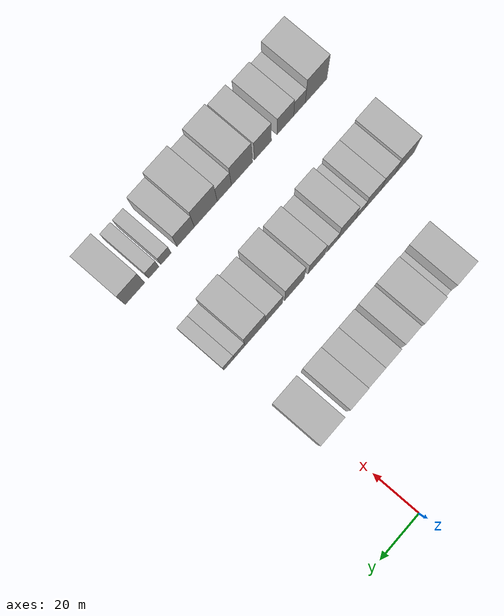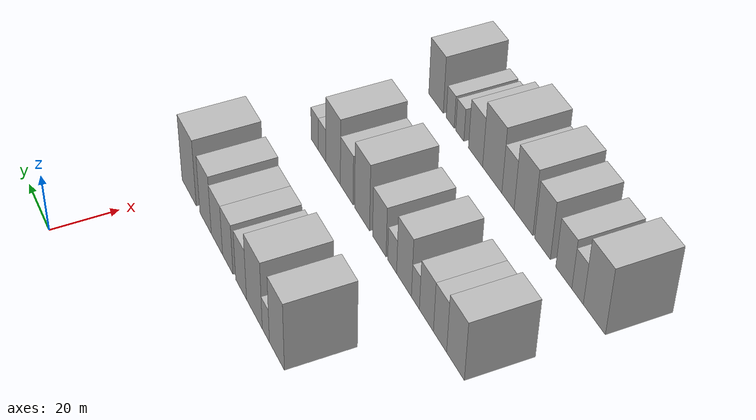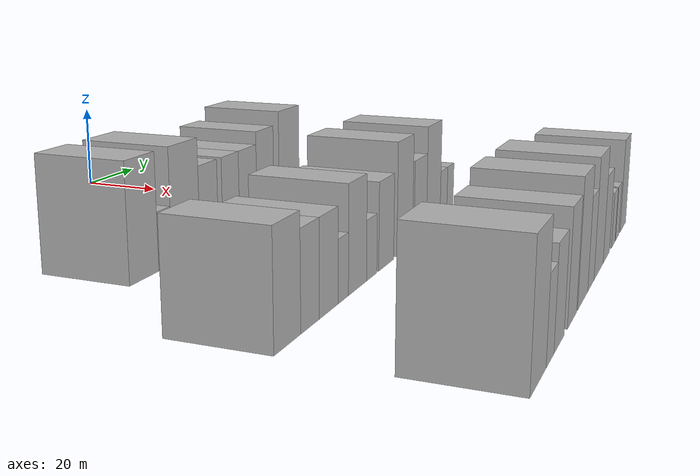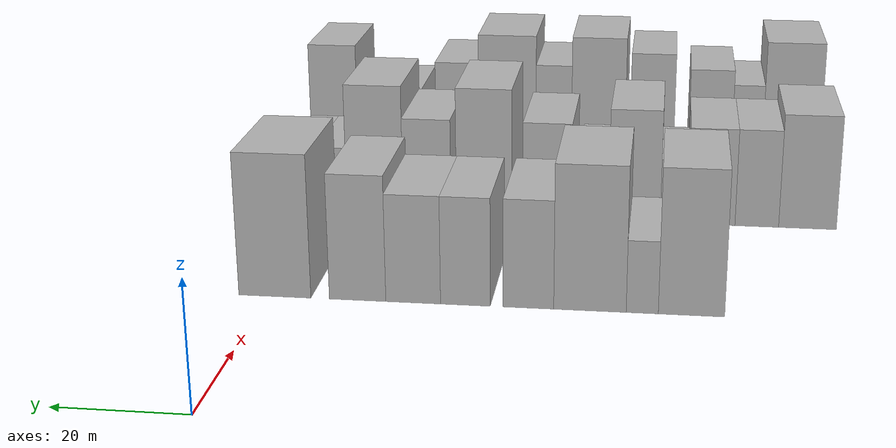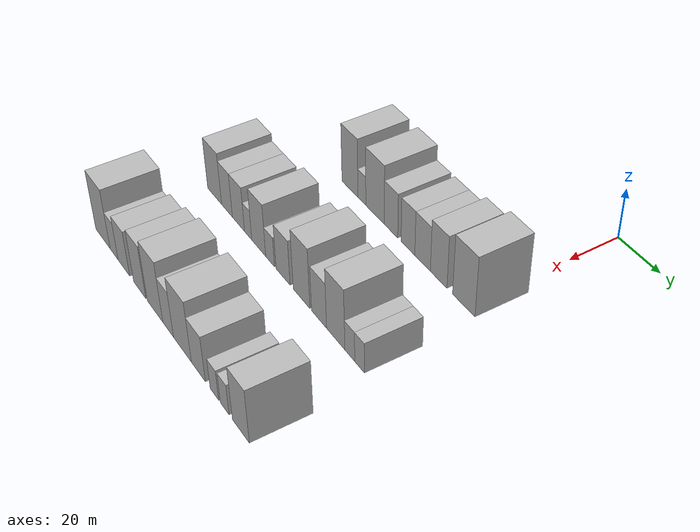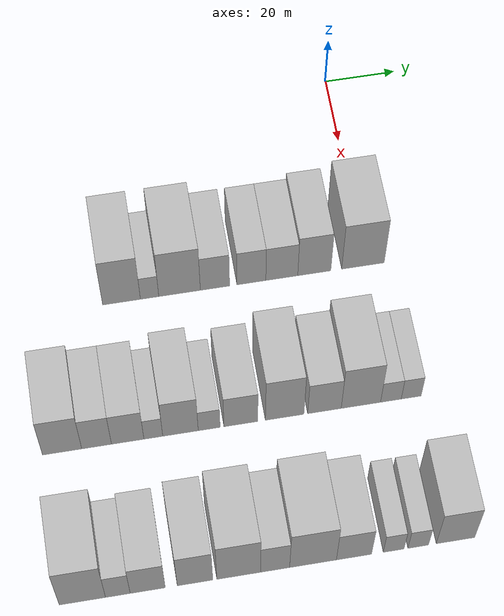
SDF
<sdf version="1.6">
 <world name="default">
  <model name="building_29">
   <static>1</static>
   <pose>50.0000 -66.9518 0 0.000000 0.000000 0.000000</pose>
   <link name="link">
    <pose>0 0 12.00 0 0 0</pose>
    <collision name="collision"><geometry><box><size>20.0000 10.2181 24.0000</size></box></geometry></collision>
    <visual name="visual">
     <cast_shadows>0</cast_shadows>
     <geometry><box><size>20.0000 10.2181 24.0000</size></box></geometry>
     <material>
      <script>
       <uri>model://HANNAS_wall/materials/scripts</uri>
       <uri>model://HANNAS_wall/materials/textures</uri>
       <name>vrc/HANNAS_wall</name>
      </script>
     </material>
    </visual>
   </link>
  </model>
  <model name="building_30">
   <static>1</static>
   <pose>50.0000 -59.3542 0 0.000000 0.000000 0.000000</pose>
   <link name="link">
    <pose>0 0 6.00 0 0 0</pose>
    <collision name="collision"><geometry><box><size>20.0000 4.9770 12.0000</size></box></geometry></collision>
    <visual name="visual">
     <cast_shadows>0</cast_shadows>
     <geometry><box><size>20.0000 4.9770 12.0000</size></box></geometry>
     <material>
      <script>
       <uri>model://HANNAS_wall/materials/scripts</uri>
       <uri>model://HANNAS_wall/materials/textures</uri>
       <name>vrc/HANNAS_wall</name>
      </script>
     </material>
    </visual>
   </link>
  </model>
  <model name="building_31">
   <static>1</static>
   <pose>50.0000 -51.2099 0 0.000000 0.000000 0.000000</pose>
   <link name="link">
    <pose>0 0 12.00 0 0 0</pose>
    <collision name="collision"><geometry><box><size>20.0000 11.3114 24.0000</size></box></geometry></collision>
    <visual name="visual">
     <cast_shadows>0</cast_shadows>
     <geometry><box><size>20.0000 11.3114 24.0000</size></box></geometry>
     <material>
      <script>
       <uri>model://HANNAS_wall/materials/scripts</uri>
       <uri>model://HANNAS_wall/materials/textures</uri>
       <name>vrc/HANNAS_wall</name>
      </script>
     </material>
    </visual>
   </link>
  </model>
  <model name="building_32">
   <static>1</static>
   <pose>50.0000 -41.5600 0 0.000000 0.000000 0.000000</pose>
   <link name="link">
    <pose>0 0 9.00 0 0 0</pose>
    <collision name="collision"><geometry><box><size>20.0000 7.9885 18.0000</size></box></geometry></collision>
    <visual name="visual">
     <cast_shadows>0</cast_shadows>
     <geometry><box><size>20.0000 7.9885 18.0000</size></box></geometry>
     <material>
      <script>
       <uri>model://HANNAS_wall/materials/scripts</uri>
       <uri>model://HANNAS_wall/materials/textures</uri>
       <name>vrc/HANNAS_wall</name>
      </script>
     </material>
    </visual>
   </link>
  </model>
  <model name="building_33">
   <static>1</static>
   <pose>50.0000 -31.6120 0 0.000000 0.000000 0.000000</pose>
   <link name="link">
    <pose>0 0 9.00 0 0 0</pose>
    <collision name="collision"><geometry><box><size>20.0000 7.9074 18.0000</size></box></geometry></collision>
    <visual name="visual">
     <cast_shadows>0</cast_shadows>
     <geometry><box><size>20.0000 7.9074 18.0000</size></box></geometry>
     <material>
      <script>
       <uri>model://HANNAS_wall/materials/scripts</uri>
       <uri>model://HANNAS_wall/materials/textures</uri>
       <name>vrc/HANNAS_wall</name>
      </script>
     </material>
    </visual>
   </link>
  </model>
  <model name="building_34">
   <static>1</static>
   <pose>50.0000 -23.2832 0 0.000000 0.000000 0.000000</pose>
   <link name="link">
    <pose>0 0 9.00 0 0 0</pose>
    <collision name="collision"><geometry><box><size>20.0000 8.7502 18.0000</size></box></geometry></collision>
    <visual name="visual">
     <cast_shadows>0</cast_shadows>
     <geometry><box><size>20.0000 8.7502 18.0000</size></box></geometry>
     <material>
      <script>
       <uri>model://HANNAS_wall/materials/scripts</uri>
       <uri>model://HANNAS_wall/materials/textures</uri>
       <name>vrc/HANNAS_wall</name>
      </script>
     </material>
    </visual>
   </link>
  </model>
  <model name="building_35">
   <static>1</static>
   <pose>50.0000 -14.3598 0 0.000000 0.000000 0.000000</pose>
   <link name="link">
    <pose>0 0 10.50 0 0 0</pose>
    <collision name="collision"><geometry><box><size>20.0000 9.0968 21.0000</size></box></geometry></collision>
    <visual name="visual">
     <cast_shadows>0</cast_shadows>
     <geometry><box><size>20.0000 9.0968 21.0000</size></box></geometry>
     <material>
      <script>
       <uri>model://HANNAS_wall/materials/scripts</uri>
       <uri>model://HANNAS_wall/materials/textures</uri>
       <name>vrc/HANNAS_wall</name>
      </script>
     </material>
    </visual>
   </link>
  </model>
  <model name="building_36">
   <static>1</static>
   <pose>50.0000 -0.9406 0 0.000000 0.000000 0.000000</pose>
   <link name="link">
    <pose>0 0 12.00 0 0 0</pose>
    <collision name="collision"><geometry><box><size>20.0000 11.7416 24.0000</size></box></geometry></collision>
    <visual name="visual">
     <cast_shadows>0</cast_shadows>
     <geometry><box><size>20.0000 11.7416 24.0000</size></box></geometry>
     <material>
      <script>
       <uri>model://HANNAS_wall/materials/scripts</uri>
       <uri>model://HANNAS_wall/materials/textures</uri>
       <name>vrc/HANNAS_wall</name>
      </script>
     </material>
    </visual>
   </link>
  </model>
  <model name="building_116">
   <static>1</static>
   <pose>90.0000 -87.7592 0 0.000000 0.000000 0.000000</pose>
   <link name="link">
    <pose>0 0 10.50 0 0 0</pose>
    <collision name="collision"><geometry><box><size>20.0000 10.1635 21.0000</size></box></geometry></collision>
    <visual name="visual">
     <cast_shadows>0</cast_shadows>
     <geometry><box><size>20.0000 10.1635 21.0000</size></box></geometry>
     <material>
      <script>
       <uri>model://HANNAS_wall/materials/scripts</uri>
       <uri>model://HANNAS_wall/materials/textures</uri>
       <name>vrc/HANNAS_wall</name>
      </script>
     </material>
    </visual>
   </link>
  </model>
  <model name="building_117">
   <static>1</static>
   <pose>90.0000 -78.8114 0 0.000000 0.000000 0.000000</pose>
   <link name="link">
    <pose>0 0 9.00 0 0 0</pose>
    <collision name="collision"><geometry><box><size>20.0000 7.7322 18.0000</size></box></geometry></collision>
    <visual name="visual">
     <cast_shadows>0</cast_shadows>
     <geometry><box><size>20.0000 7.7322 18.0000</size></box></geometry>
     <material>
      <script>
       <uri>model://HANNAS_wall/materials/scripts</uri>
       <uri>model://HANNAS_wall/materials/textures</uri>
       <name>vrc/HANNAS_wall</name>
      </script>
     </material>
    </visual>
   </link>
  </model>
  <model name="building_118">
   <static>1</static>
   <pose>90.0000 -70.7205 0 0.000000 0.000000 0.000000</pose>
   <link name="link">
    <pose>0 0 9.00 0 0 0</pose>
    <collision name="collision"><geometry><box><size>20.0000 8.4495 18.0000</size></box></geometry></collision>
    <visual name="visual">
     <cast_shadows>0</cast_shadows>
     <geometry><box><size>20.0000 8.4495 18.0000</size></box></geometry>
     <material>
      <script>
       <uri>model://HANNAS_wall/materials/scripts</uri>
       <uri>model://HANNAS_wall/materials/textures</uri>
       <name>vrc/HANNAS_wall</name>
      </script>
     </material>
    </visual>
   </link>
  </model>
  <model name="building_119">
   <static>1</static>
   <pose>90.0000 -64.0453 0 0.000000 0.000000 0.000000</pose>
   <link name="link">
    <pose>0 0 6.00 0 0 0</pose>
    <collision name="collision"><geometry><box><size>20.0000 4.9009 12.0000</size></box></geometry></collision>
    <visual name="visual">
     <cast_shadows>0</cast_shadows>
     <geometry><box><size>20.0000 4.9009 12.0000</size></box></geometry>
     <material>
      <script>
       <uri>model://HANNAS_wall/materials/scripts</uri>
       <uri>model://HANNAS_wall/materials/textures</uri>
       <name>vrc/HANNAS_wall</name>
      </script>
     </material>
    </visual>
   </link>
  </model>
  <model name="building_120">
   <static>1</static>
   <pose>90.0000 -56.9496 0 0.000000 0.000000 0.000000</pose>
   <link name="link">
    <pose>0 0 10.50 0 0 0</pose>
    <collision name="collision"><geometry><box><size>20.0000 9.2904 21.0000</size></box></geometry></collision>
    <visual name="visual">
     <cast_shadows>0</cast_shadows>
     <geometry><box><size>20.0000 9.2904 21.0000</size></box></geometry>
     <material>
      <script>
       <uri>model://HANNAS_wall/materials/scripts</uri>
       <uri>model://HANNAS_wall/materials/textures</uri>
       <name>vrc/HANNAS_wall</name>
      </script>
     </material>
    </visual>
   </link>
  </model>
  <model name="building_121">
   <static>1</static>
   <pose>90.0000 -49.4290 0 0.000000 0.000000 0.000000</pose>
   <link name="link">
    <pose>0 0 6.00 0 0 0</pose>
    <collision name="collision"><geometry><box><size>20.0000 5.7508 12.0000</size></box></geometry></collision>
    <visual name="visual">
     <cast_shadows>0</cast_shadows>
     <geometry><box><size>20.0000 5.7508 12.0000</size></box></geometry>
     <material>
      <script>
       <uri>model://HANNAS_wall/materials/scripts</uri>
       <uri>model://HANNAS_wall/materials/textures</uri>
       <name>vrc/HANNAS_wall</name>
      </script>
     </material>
    </visual>
   </link>
  </model>
  <model name="building_122">
   <static>1</static>
   <pose>90.0000 -41.1058 0 0.000000 0.000000 0.000000</pose>
   <link name="link">
    <pose>0 0 9.00 0 0 0</pose>
    <collision name="collision"><geometry><box><size>20.0000 8.8958 18.0000</size></box></geometry></collision>
    <visual name="visual">
     <cast_shadows>0</cast_shadows>
     <geometry><box><size>20.0000 8.8958 18.0000</size></box></geometry>
     <material>
      <script>
       <uri>model://HANNAS_wall/materials/scripts</uri>
       <uri>model://HANNAS_wall/materials/textures</uri>
       <name>vrc/HANNAS_wall</name>
      </script>
     </material>
    </visual>
   </link>
  </model>
  <model name="building_123">
   <static>1</static>
   <pose>90.0000 -29.5715 0 0.000000 0.000000 0.000000</pose>
   <link name="link">
    <pose>0 0 12.00 0 0 0</pose>
    <collision name="collision"><geometry><box><size>20.0000 10.1729 24.0000</size></box></geometry></collision>
    <visual name="visual">
     <cast_shadows>0</cast_shadows>
     <geometry><box><size>20.0000 10.1729 24.0000</size></box></geometry>
     <material>
      <script>
       <uri>model://HANNAS_wall/materials/scripts</uri>
       <uri>model://HANNAS_wall/materials/textures</uri>
       <name>vrc/HANNAS_wall</name>
      </script>
     </material>
    </visual>
   </link>
  </model>
  <model name="building_124">
   <static>1</static>
   <pose>90.0000 -19.0486 0 0.000000 0.000000 0.000000</pose>
   <link name="link">
    <pose>0 0 9.00 0 0 0</pose>
    <collision name="collision"><geometry><box><size>20.0000 8.8729 18.0000</size></box></geometry></collision>
    <visual name="visual">
     <cast_shadows>0</cast_shadows>
     <geometry><box><size>20.0000 8.8729 18.0000</size></box></geometry>
     <material>
      <script>
       <uri>model://HANNAS_wall/materials/scripts</uri>
       <uri>model://HANNAS_wall/materials/textures</uri>
       <name>vrc/HANNAS_wall</name>
      </script>
     </material>
    </visual>
   </link>
  </model>
  <model name="building_125">
   <static>1</static>
   <pose>90.0000 -9.3797 0 0.000000 0.000000 0.000000</pose>
   <link name="link">
    <pose>0 0 12.00 0 0 0</pose>
    <collision name="collision"><geometry><box><size>20.0000 10.4649 24.0000</size></box></geometry></collision>
    <visual name="visual">
     <cast_shadows>0</cast_shadows>
     <geometry><box><size>20.0000 10.4649 24.0000</size></box></geometry>
     <material>
      <script>
       <uri>model://HANNAS_wall/materials/scripts</uri>
       <uri>model://HANNAS_wall/materials/textures</uri>
       <name>vrc/HANNAS_wall</name>
      </script>
     </material>
    </visual>
   </link>
  </model>
  <model name="building_126">
   <static>1</static>
   <pose>90.0000 -1.3947 0 0.000000 0.000000 0.000000</pose>
   <link name="link">
    <pose>0 0 6.00 0 0 0</pose>
    <collision name="collision"><geometry><box><size>20.0000 5.5050 12.0000</size></box></geometry></collision>
    <visual name="visual">
     <cast_shadows>0</cast_shadows>
     <geometry><box><size>20.0000 5.5050 12.0000</size></box></geometry>
     <material>
      <script>
       <uri>model://HANNAS_wall/materials/scripts</uri>
       <uri>model://HANNAS_wall/materials/textures</uri>
       <name>vrc/HANNAS_wall</name>
      </script>
     </material>
    </visual>
   </link>
  </model>
  <model name="building_127">
   <static>1</static>
   <pose>90.0000 4.0115 0 0.000000 0.000000 0.000000</pose>
   <link name="link">
    <pose>0 0 6.00 0 0 0</pose>
    <collision name="collision"><geometry><box><size>20.0000 5.3074 12.0000</size></box></geometry></collision>
    <visual name="visual">
     <cast_shadows>0</cast_shadows>
     <geometry><box><size>20.0000 5.3074 12.0000</size></box></geometry>
     <material>
      <script>
       <uri>model://HANNAS_wall/materials/scripts</uri>
       <uri>model://HANNAS_wall/materials/textures</uri>
       <name>vrc/HANNAS_wall</name>
      </script>
     </material>
    </visual>
   </link>
  </model>
  <model name="building_199">
   <static>1</static>
   <pose>130.0000 -87.4715 0 0.000000 0.000000 0.000000</pose>
   <link name="link">
    <pose>0 0 12.00 0 0 0</pose>
    <collision name="collision"><geometry><box><size>20.0000 11.5410 24.0000</size></box></geometry></collision>
    <visual name="visual">
     <cast_shadows>0</cast_shadows>
     <geometry><box><size>20.0000 11.5410 24.0000</size></box></geometry>
     <material>
      <script>
       <uri>model://HANNAS_wall/materials/scripts</uri>
       <uri>model://HANNAS_wall/materials/textures</uri>
       <name>vrc/HANNAS_wall</name>
      </script>
     </material>
    </visual>
   </link>
  </model>
  <model name="building_200">
   <static>1</static>
   <pose>130.0000 -78.6149 0 0.000000 0.000000 0.000000</pose>
   <link name="link">
    <pose>0 0 7.50 0 0 0</pose>
    <collision name="collision"><geometry><box><size>20.0000 6.1722 15.0000</size></box></geometry></collision>
    <visual name="visual">
     <cast_shadows>0</cast_shadows>
     <geometry><box><size>20.0000 6.1722 15.0000</size></box></geometry>
     <material>
      <script>
       <uri>model://HANNAS_wall/materials/scripts</uri>
       <uri>model://HANNAS_wall/materials/textures</uri>
       <name>vrc/HANNAS_wall</name>
      </script>
     </material>
    </visual>
   </link>
  </model>
  <model name="building_201">
   <static>1</static>
   <pose>130.0000 -71.1350 0 0.000000 0.000000 0.000000</pose>
   <link name="link">
    <pose>0 0 9.00 0 0 0</pose>
    <collision name="collision"><geometry><box><size>20.0000 8.7876 18.0000</size></box></geometry></collision>
    <visual name="visual">
     <cast_shadows>0</cast_shadows>
     <geometry><box><size>20.0000 8.7876 18.0000</size></box></geometry>
     <material>
      <script>
       <uri>model://HANNAS_wall/materials/scripts</uri>
       <uri>model://HANNAS_wall/materials/textures</uri>
       <name>vrc/HANNAS_wall</name>
      </script>
     </material>
    </visual>
   </link>
  </model>
  <model name="building_202">
   <static>1</static>
   <pose>130.0000 -59.2641 0 0.000000 0.000000 0.000000</pose>
   <link name="link">
    <pose>0 0 10.50 0 0 0</pose>
    <collision name="collision"><geometry><box><size>20.0000 8.9542 21.0000</size></box></geometry></collision>
    <visual name="visual">
     <cast_shadows>0</cast_shadows>
     <geometry><box><size>20.0000 8.9542 21.0000</size></box></geometry>
     <material>
      <script>
       <uri>model://HANNAS_wall/materials/scripts</uri>
       <uri>model://HANNAS_wall/materials/textures</uri>
       <name>vrc/HANNAS_wall</name>
      </script>
     </material>
    </visual>
   </link>
  </model>
  <model name="building_203">
   <static>1</static>
   <pose>130.0000 -48.2722 0 0.000000 0.000000 0.000000</pose>
   <link name="link">
    <pose>0 0 12.00 0 0 0</pose>
    <collision name="collision"><geometry><box><size>20.0000 11.0297 24.0000</size></box></geometry></collision>
    <visual name="visual">
     <cast_shadows>0</cast_shadows>
     <geometry><box><size>20.0000 11.0297 24.0000</size></box></geometry>
     <material>
      <script>
       <uri>model://HANNAS_wall/materials/scripts</uri>
       <uri>model://HANNAS_wall/materials/textures</uri>
       <name>vrc/HANNAS_wall</name>
      </script>
     </material>
    </visual>
   </link>
  </model>
  <model name="building_204">
   <static>1</static>
   <pose>130.0000 -39.0736 0 0.000000 0.000000 0.000000</pose>
   <link name="link">
    <pose>0 0 9.00 0 0 0</pose>
    <collision name="collision"><geometry><box><size>20.0000 7.3675 18.0000</size></box></geometry></collision>
    <visual name="visual">
     <cast_shadows>0</cast_shadows>
     <geometry><box><size>20.0000 7.3675 18.0000</size></box></geometry>
     <material>
      <script>
       <uri>model://HANNAS_wall/materials/scripts</uri>
       <uri>model://HANNAS_wall/materials/textures</uri>
       <name>vrc/HANNAS_wall</name>
      </script>
     </material>
    </visual>
   </link>
  </model>
  <model name="building_205">
   <static>1</static>
   <pose>130.0000 -29.4464 0 0.000000 0.000000 0.000000</pose>
   <link name="link">
    <pose>0 0 12.00 0 0 0</pose>
    <collision name="collision"><geometry><box><size>20.0000 11.8867 24.0000</size></box></geometry></collision>
    <visual name="visual">
     <cast_shadows>0</cast_shadows>
     <geometry><box><size>20.0000 11.8867 24.0000</size></box></geometry>
     <material>
      <script>
       <uri>model://HANNAS_wall/materials/scripts</uri>
       <uri>model://HANNAS_wall/materials/textures</uri>
       <name>vrc/HANNAS_wall</name>
      </script>
     </material>
    </visual>
   </link>
  </model>
  <model name="building_206">
   <static>1</static>
   <pose>130.0000 -19.0228 0 0.000000 0.000000 0.000000</pose>
   <link name="link">
    <pose>0 0 9.00 0 0 0</pose>
    <collision name="collision"><geometry><box><size>20.0000 8.9606 18.0000</size></box></geometry></collision>
    <visual name="visual">
     <cast_shadows>0</cast_shadows>
     <geometry><box><size>20.0000 8.9606 18.0000</size></box></geometry>
     <material>
      <script>
       <uri>model://HANNAS_wall/materials/scripts</uri>
       <uri>model://HANNAS_wall/materials/textures</uri>
       <name>vrc/HANNAS_wall</name>
      </script>
     </material>
    </visual>
   </link>
  </model>
  <model name="building_207">
   <static>1</static>
   <pose>130.0000 -8.8925 0 0.000000 0.000000 0.000000</pose>
   <link name="link">
    <pose>0 0 6.00 0 0 0</pose>
    <collision name="collision"><geometry><box><size>20.0000 5.3000 12.0000</size></box></geometry></collision>
    <visual name="visual">
     <cast_shadows>0</cast_shadows>
     <geometry><box><size>20.0000 5.3000 12.0000</size></box></geometry>
     <material>
      <script>
       <uri>model://HANNAS_wall/materials/scripts</uri>
       <uri>model://HANNAS_wall/materials/textures</uri>
       <name>vrc/HANNAS_wall</name>
      </script>
     </material>
    </visual>
   </link>
  </model>
  <model name="building_208">
   <static>1</static>
   <pose>130.0000 -2.6003 0 0.000000 0.000000 0.000000</pose>
   <link name="link">
    <pose>0 0 6.00 0 0 0</pose>
    <collision name="collision"><geometry><box><size>20.0000 5.2844 12.0000</size></box></geometry></collision>
    <visual name="visual">
     <cast_shadows>0</cast_shadows>
     <geometry><box><size>20.0000 5.2844 12.0000</size></box></geometry>
     <material>
      <script>
       <uri>model://HANNAS_wall/materials/scripts</uri>
       <uri>model://HANNAS_wall/materials/textures</uri>
       <name>vrc/HANNAS_wall</name>
      </script>
     </material>
    </visual>
   </link>
  </model>
  <model name="building_209">
   <static>1</static>
   <pose>130.0000 6.9891 0 0.000000 0.000000 0.000000</pose>
   <link name="link">
    <pose>0 0 10.50 0 0 0</pose>
    <collision name="collision"><geometry><box><size>20.0000 9.8945 21.0000</size></box></geometry></collision>
    <visual name="visual">
     <cast_shadows>0</cast_shadows>
     <geometry><box><size>20.0000 9.8945 21.0000</size></box></geometry>
     <material>
      <script>
       <uri>model://HANNAS_wall/materials/scripts</uri>
       <uri>model://HANNAS_wall/materials/textures</uri>
       <name>vrc/HANNAS_wall</name>
      </script>
     </material>
    </visual>
   </link>
  </model>
 </world>
</sdf>
